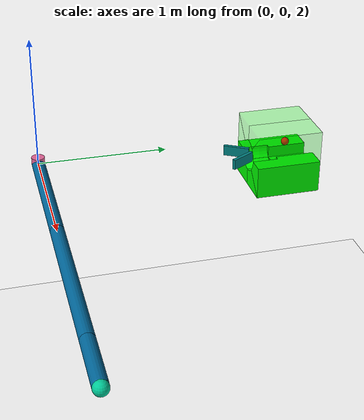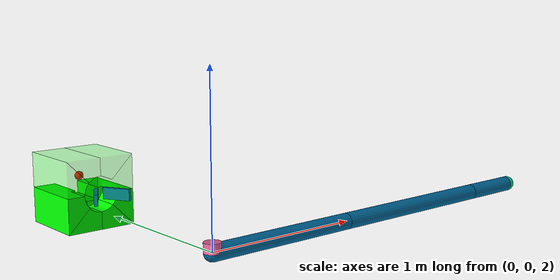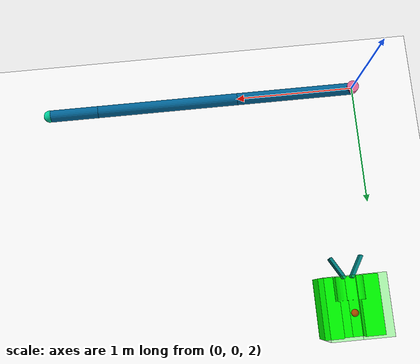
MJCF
<mujoco model="example">
    <compiler coordinate="global"
              texturedir="textures/"
              meshdir="mesh/visual/"/>
	<visual>
		<global  fovy= "real"/>
	</visual>
    <option>
    </option>

    <asset>
		<mesh file="Part1.stl" name="bread_mesh1" scale="0.05 0.05 0.05"  />
		<mesh file="Part2.stl" name="bread_mesh2" scale="0.05 0.05 0.05"  />
		<mesh file="Part3.stl" name="bread_mesh3" scale="0.05 0.05 0.05"  />
		<mesh file="Part4.stl" name="bread_mesh4" scale="0.05 0.05 0.05"  />
		<mesh file="Part5.stl" name="bread_mesh5" scale="0.05 0.05 0.05"  />
		<mesh file="Part6.stl" name="bread_mesh6" scale="0.05 0.05 0.05"  />
		<mesh file="Part7.stl" name="bread_mesh7" scale="0.05 0.05 0.05"  />
		<mesh file="Part8.stl" name="bread_mesh8" scale="0.05 0.05 0.05"  />
		<mesh file="Part9.stl" name="bread_mesh9" scale="0.05 0.05 0.05"  />

		<!--Textures-->
		<texture type="skybox" builtin="gradient" rgb1="1 1 1" rgb2=".6 .8 1"  width="256" height="256"/>
	</asset>

	<worldbody>
		<!--Lighting parameters-->
		<light pos="0 1 1" dir="0 -1 -1" diffuse="1 1 1"/>
		<!--Floor Property-->
		<geom name="floor" pos="0 0 0" rgba="1 1 1 0.5" size="10 10 10" type="plane"/>
		<geom conaffinity="0" contype="0" fromto="0 0 2 0 0 2.06" name="root" rgba="0.9 0.4 0.6 1" size=".05" type="cylinder"/>
		<body name="first_pole">
			<inertial pos="0.5 0 2" mass="0.01" diaginertia="1e-008 1e-008 1e-008" />
			<geom type="capsule" fromto="0 0 2  1 0 2" size="0.05" rgba=".0 .4 .6 1"/>
			<joint name='a' type="hinge" pos="0.0 0 2" axis="0 0 1"/>
			<body name="second_pole">
					<inertial pos="1.6 0 2" mass="0.01" diaginertia="1e-008 1e-008 1e-008" />
					<geom type="capsule" fromto="1 0 2  2.2 0 2" size="0.05" rgba=".0 .4 0.6 1"/>
					<joint name='b' type="hinge" pos="1 0 2" axis="0 0 1"/>
					<body name="third pole">
					<inertial pos="2.4 0 2" mass ="0.01" diaginertia="1e-008 1e-008 1e-008" />
						<geom type="capsule" fromto="2.2 0 2  2.6 0 2" size="0.05" rgba=".0 .4 .6 1"/>
						<joint name='c' type="hinge" pos="2.2 0 2" axis="0 0 1"/>
						<body name="gripper">
							<inertial pos="2.62 0 2" mass="0.01" diaginertia="1e-008 1e-008 1e-008" />
							<geom name="gripper" pos="2.62 0 2" rgba="0.0 0.8 0.6 1" size=".05" type="sphere"/>
							<site name="target" size="0.006" pos="2.6 0 2" rgba="0.0 0.8 0.6 1"/>
						</body>
					</body>

			</body>
		</body>

		<body name="bread_mesh">
		<geom pos="0.25 2.1 2.25" friction="1 0.05 0.001" mesh="bread_mesh1" type="mesh" rgba="0 1 0 0.3" group="1" mass="0.0001" zaxis="0 0 -1"/>
		<geom pos="0.0 2.1 2.25" friction="1 0.05 0.001" mesh="bread_mesh2" type="mesh" rgba="0 1 0 0.3" group="1" mass="0.0001" zaxis="0 0 -1"/>
		<geom pos="0.338 2.1 2.25" friction="1 0.05 0.001" mesh="bread_mesh3" type="mesh" rgba="0 1 0 0.3" group="1" mass="0.0001" zaxis="0 0 -1"/>
		<geom pos="0.0 2.1 2.25" friction="1 0.05 0.001" mesh="bread_mesh4" type="mesh" rgba="0 1 0 0.3" group="1" mass="0.0001" zaxis="0 0 -1"/>
		<geom pos="0.25 2.1 1.911" friction="1 0.05 0.001" mesh="bread_mesh5" type="mesh" rgba="0 1 0 1" group="1" mass="0.0001" zaxis="0 0 -1"/>
		<geom pos="0.0 2.1 1.911" friction="1 0.05 0.001" mesh="bread_mesh6" type="mesh" rgba="0 1 0 1" group="1" mass="0.0001" zaxis="0 0 -1"/>
		<geom pos="0.338 2.1 2.00" friction="1 0.05 0.001" mesh="bread_mesh7" type="mesh" rgba="0 1 0 1" group="1" mass="0.0001" zaxis="0 0 -1"/>
		<geom pos="0.0 2.1 2.00" friction="1 0.05 0.001" mesh="bread_mesh8" type="mesh" rgba="0 1 0 1" group="1" mass="0.0001" zaxis="0 0 -1"/>
		<geom pos="0.162 2.1 2.088" friction="1 0.05 0.001" mesh="bread_mesh9" type="mesh" rgba="0 1 0 0.7" group="1" mass="0.0001" zaxis="0 0 -1"/>

		</body>

		<body name="spr1">
			<inertial pos="0 0 0" mass="0.005" diaginertia="1e-008 1e-008 1e-008" />
			<geom conaffinity="1" contype="1" name='spr1' type="box" pos="0.17 1.53 2" size="0.10 0.013 0.04" axisangle ="0 0 1 60" friction="0.01 0.01 0.01" rgba="0.0 .5 .5 1" group="1" />
			<joint name='spr1' type="slide" pos="0 0 0.01" axis="0.866 -0.5 0" stiffness="0.005" damping="0.001"  />
		</body>

		<body name="spr2">
			<inertial pos="0 0 0" mass="0.005" diaginertia="1e-008 1e-008 1e-008" />
			<geom conaffinity="1" contype="1" name='spr2' type="box" pos="0.33 1.53 2" size="0.10 0.013 0.04" axisangle ="0 0 -1 60" friction="0.01 0.01 0.01" rgba="0.0 .5 .5 1" group="1" />
			<joint name='spr2' type="slide" pos="0 0 0.01" axis="0.866 0.5 0" stiffness="0.005" damping="0.001"  />
		</body>

		<body name="g" pos="0.240 2 2">
			<geom conaffinity="0" contype="0" name="g" pos="0.248 1.9 2.08" rgba="1 0.0 0.0 1" size=".03" type="sphere"/>
		</body>

</worldbody>

	<actuator>
		<motor joint='a'/>
		<motor joint='b'/>
		<motor joint='c'/>
	</actuator>

	<sensor>
			<velocimeter name="tar_vel" site="target"/>
			<accelerometer  name="tar_acc" site="target"/>
			<force name="tar_touch" site="target"/>
			<torque name="tar_torque" site="target"/>

	</sensor>

</mujoco>
